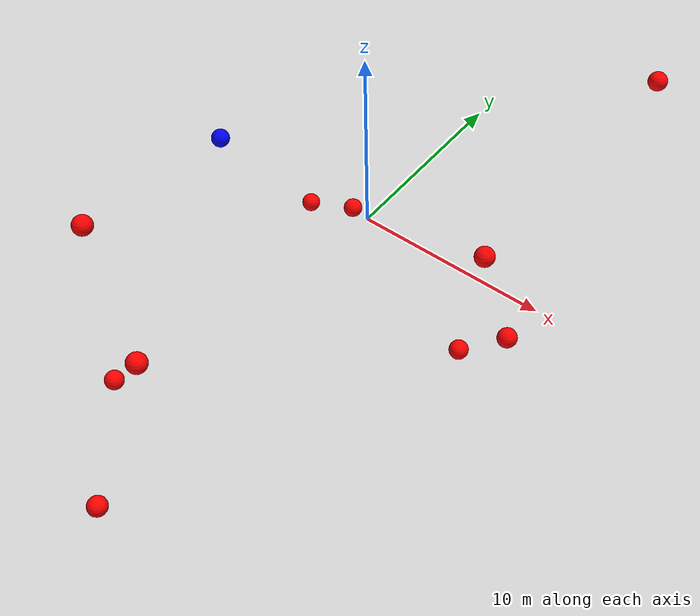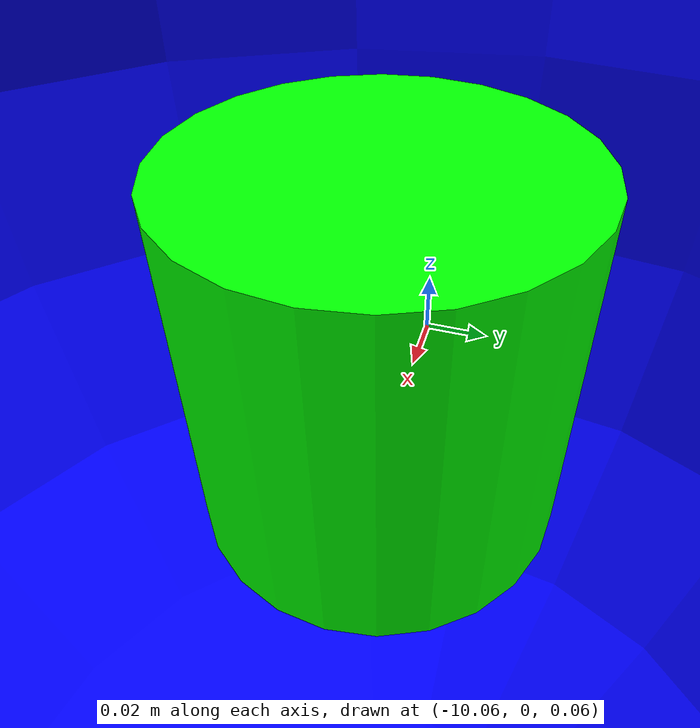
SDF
<?xml version="1.0" ?>
<sdf version="1.8">
    <world name="3d_world">
        <physics name="1ms" type="ode">
            <max_step_size>0.001</max_step_size>
            <real_time_factor>1.0</real_time_factor>
            <real_time_update_rate>1000.0</real_time_update_rate>
        </physics>
        <gravity>0 0 0</gravity>

        <plugin
            filename="gz-sim-physics-system"
            name="gz::sim::v8::systems::Physics">
        </plugin>
        <plugin
            filename="libignition-gazebo-user-commands-system.so"
            name="ignition::gazebo::systems::UserCommands">
        </plugin>
        <plugin
            filename="gz-sim-scene-broadcaster-system"
            name="gz::sim::systems::SceneBroadcaster">
        </plugin>
        <plugin
            filename="gz-sim-sensors-system"
            name="gz::sim::systems::Sensors">
            <render_engine>ogre2</render_engine>
        </plugin>

        <light type="directional" name="sun">
            <cast_shadows>true</cast_shadows>
            <pose>0 0 10 0 0 0</pose>
            <diffuse>0.8 0.8 0.8 1</diffuse>
            <specular>0.2 0.2 0.2 1</specular>
            <attenuation>
                <range>1000</range>
                <constant>0.9</constant>
                <linear>0.01</linear>
                <quadratic>0.001</quadratic>
            </attenuation>
            <direction>-0.5 0.1 -0.9</direction>
        </light>

        <!-- AGENTE -->
        <model name='agente' canonical_link='chassis'>
            <pose relative_to='world'>-10.0 0 0.0 0 0 0</pose>
            <link name='chassis'>
                <pose relative_to='__model__'>0.0 0 0.0 0 0 0</pose>
                <inertial>
                    <mass>1.14395</mass>
                    <inertia>
                        <ixx>0.095329</ixx>
                        <ixy>0</ixy>
                        <ixz>0</ixz>
                        <iyy>0.381317</iyy>
                        <iyz>0</iyz>
                        <izz>0.476646</izz>
                    </inertia>
                </inertial>
                <visual name='visual'>
                    <geometry>
                        <sphere>
                            <radius>0.5</radius>
                        </sphere>
                    </geometry>
                    <material>
                        <ambient>0.0 0.0 1.0 1</ambient>
                        <diffuse>0.0 0.0 1.0 1</diffuse>
                        <specular>0.0 0.0 1.0 1</specular>
                    </material>
                </visual>
                <collision name='collision'>
                    <geometry>
                        <sphere>
                            <radius>0.5</radius>
                        </sphere>
                    </geometry>
                </collision>
                <enable_gravity>false</enable_gravity>
            </link>

            <link name='lidar_link'>
                <pose relative_to='chassis'>0.0 0 0.1 0 0 0</pose>
                <inertial>
                    <mass>0.1</mass>
                    <inertia>
                        <ixx>0.000166667</ixx>
                        <iyy>0.000166667</iyy>
                        <izz>0.000166667</izz>
                    </inertia>
                </inertial>
                <collision name='collision'>
                    <geometry>
                        <cylinder>
                            <radius>0.05</radius>
                            <length>0.1</length>
                        </cylinder>
                    </geometry>
                </collision>
                <visual name='visual'>
                    <geometry>
                        <cylinder>
                            <radius>0.05</radius>
                            <length>0.1</length>
                        </cylinder>
                    </geometry>
                    <material>
                        <ambient>0.0 1.0 0.0 1</ambient>
                        <diffuse>0.0 1.0 0.0 1</diffuse>
                        <specular>0.0 1.0 0.0 1</specular>
                    </material>
                </visual>
                <sensor name="lidar" type="gpu_lidar">
                    <topic>scan</topic>
                    <update_rate>10</update_rate>
                    <lidar>
                        <scan>
                            <horizontal>
                                <samples>5000</samples>
                                <resolution>1</resolution>
                                <min_angle>-3.14159</min_angle>
                                <max_angle>3.14159</max_angle>
                            </horizontal>
                        </scan>
                        <range>
                            <min>0.1</min>
                            <max>10.0</max>
                            <resolution>0.01</resolution>
                        </range>
                    </lidar>
                    <visualize>true</visualize>
                    <always_on>true</always_on>
                    <update_rate>10</update_rate>
                    <pose_frame>lidar</pose_frame>
                </sensor>
                <enable_gravity>false</enable_gravity>
            </link>

            <joint name="lidar_joint" type="fixed">
                <parent>chassis</parent>
                <child>lidar_link</child>
            </joint>

            <plugin
                filename="ignition-gazebo-joint-state-publisher-system"
                name="ignition::gazebo::systems::JointStatePublisher">
            </plugin>
            <plugin
                filename="ignition-gazebo-odometry-publisher-system"
                name="ignition::gazebo::systems::OdometryPublisher">
                <dimensions>3</dimensions>
            </plugin>
            <plugin
                filename="ignition-gazebo-velocity-control-system"
                name="ignition::gazebo::systems::VelocityControl">
                <initial_linear>0.0 0 0</initial_linear>
                <initial_angular>0 0 0.0</initial_angular>
            </plugin>
            <plugin
                filename="libignition-gazebo-pose-publisher-system.so"
                name="ignition::gazebo::systems::PosePublisher">
                <topic>/agente/pose</topic>
                <frame_id>agente</frame_id>
                <update_rate>30</update_rate>
            </plugin>
        </model>

        <!-- OBSTACLE 1 -->
        <model name='obstacle_1' canonical_link='obstacle'>
            <static>false</static>
            <pose relative_to='world'>6.88 -1.60 -3.72 0 0 0</pose>
            <link name='obstacle'>
                <pose relative_to='__model__'>0.0 0 0.0 0 0 0</pose>
                <visual name='visual'>
                    <geometry>
                        <sphere>
                            <radius>0.50</radius>
                        </sphere>
                    </geometry>
                    <material>
                        <ambient>1.0 0.0 0.0 1</ambient>
                        <diffuse>1.0 0.0 0.0 1</diffuse>
                        <specular>1.0 0.0 0.0 1</specular>
                    </material>
                </visual>
                <collision name='collision'>
                    <geometry>
                        <sphere>
                            <radius>0.50</radius>
                        </sphere>
                    </geometry>
                </collision>
                <enable_gravity>false</enable_gravity>
            </link>

            <plugin
                filename="ignition-gazebo-velocity-control-system"
                name="ignition::gazebo::systems::VelocityControl">
                <initial_linear>-1.89 0.26 0.61</initial_linear>
                <initial_angular>0 0 0</initial_angular>
            </plugin>

            <plugin
                filename="ignition-gazebo-odometry-publisher-system"
                name="ignition::gazebo::systems::OdometryPublisher">
                <dimensions>3</dimensions>
            </plugin>
        </model>

        <!-- OBSTACLE 2 -->
        <model name='obstacle_2' canonical_link='obstacle'>
            <static>false</static>
            <pose relative_to='world'>-5.76 -13.05 -4.17 0 0 0</pose>
            <link name='obstacle'>
                <pose relative_to='__model__'>0.0 0 0.0 0 0 0</pose>
                <visual name='visual'>
                    <geometry>
                        <sphere>
                            <radius>0.50</radius>
                        </sphere>
                    </geometry>
                    <material>
                        <ambient>1.0 0.0 0.0 1</ambient>
                        <diffuse>1.0 0.0 0.0 1</diffuse>
                        <specular>1.0 0.0 0.0 1</specular>
                    </material>
                </visual>
                <collision name='collision'>
                    <geometry>
                        <sphere>
                            <radius>0.50</radius>
                        </sphere>
                    </geometry>
                </collision>
                <enable_gravity>false</enable_gravity>
            </link>

            <plugin
                filename="ignition-gazebo-velocity-control-system"
                name="ignition::gazebo::systems::VelocityControl">
                <initial_linear>1.38 1.38 0.44</initial_linear>
                <initial_angular>0 0 0</initial_angular>
            </plugin>

            <plugin
                filename="ignition-gazebo-odometry-publisher-system"
                name="ignition::gazebo::systems::OdometryPublisher">
                <dimensions>3</dimensions>
            </plugin>
        </model>

        <!-- OBSTACLE 3 -->
        <model name='obstacle_3' canonical_link='obstacle'>
            <static>false</static>
            <pose relative_to='world'>-2.94 2.43 -2.98 0 0 0</pose>
            <link name='obstacle'>
                <pose relative_to='__model__'>0.0 0 0.0 0 0 0</pose>
                <visual name='visual'>
                    <geometry>
                        <sphere>
                            <radius>0.50</radius>
                        </sphere>
                    </geometry>
                    <material>
                        <ambient>1.0 0.0 0.0 1</ambient>
                        <diffuse>1.0 0.0 0.0 1</diffuse>
                        <specular>1.0 0.0 0.0 1</specular>
                    </material>
                </visual>
                <collision name='collision'>
                    <geometry>
                        <sphere>
                            <radius>0.50</radius>
                        </sphere>
                    </geometry>
                </collision>
                <enable_gravity>false</enable_gravity>
            </link>

            <plugin
                filename="ignition-gazebo-velocity-control-system"
                name="ignition::gazebo::systems::VelocityControl">
                <initial_linear>1.31 -0.41 0.50</initial_linear>
                <initial_angular>0 0 0</initial_angular>
            </plugin>

            <plugin
                filename="ignition-gazebo-odometry-publisher-system"
                name="ignition::gazebo::systems::OdometryPublisher">
                <dimensions>3</dimensions>
            </plugin>
        </model>

        <!-- OBSTACLE 4 -->
        <model name='obstacle_4' canonical_link='obstacle'>
            <static>false</static>
            <pose relative_to='world'>8.56 12.85 4.65 0 0 0</pose>
            <link name='obstacle'>
                <pose relative_to='__model__'>0.0 0 0.0 0 0 0</pose>
                <visual name='visual'>
                    <geometry>
                        <sphere>
                            <radius>0.50</radius>
                        </sphere>
                    </geometry>
                    <material>
                        <ambient>1.0 0.0 0.0 1</ambient>
                        <diffuse>1.0 0.0 0.0 1</diffuse>
                        <specular>1.0 0.0 0.0 1</specular>
                    </material>
                </visual>
                <collision name='collision'>
                    <geometry>
                        <sphere>
                            <radius>0.50</radius>
                        </sphere>
                    </geometry>
                </collision>
                <enable_gravity>false</enable_gravity>
            </link>

            <plugin
                filename="ignition-gazebo-velocity-control-system"
                name="ignition::gazebo::systems::VelocityControl">
                <initial_linear>-1.38 -1.36 -0.49</initial_linear>
                <initial_angular>0 0 0</initial_angular>
            </plugin>

            <plugin
                filename="ignition-gazebo-odometry-publisher-system"
                name="ignition::gazebo::systems::OdometryPublisher">
                <dimensions>3</dimensions>
            </plugin>
        </model>

        <!-- OBSTACLE 5 -->
        <model name='obstacle_5' canonical_link='obstacle'>
            <static>false</static>
            <pose relative_to='world'>9.35 -1.34 -1.13 0 0 0</pose>
            <link name='obstacle'>
                <pose relative_to='__model__'>0.0 0 0.0 0 0 0</pose>
                <visual name='visual'>
                    <geometry>
                        <sphere>
                            <radius>0.50</radius>
                        </sphere>
                    </geometry>
                    <material>
                        <ambient>1.0 0.0 0.0 1</ambient>
                        <diffuse>1.0 0.0 0.0 1</diffuse>
                        <specular>1.0 0.0 0.0 1</specular>
                    </material>
                </visual>
                <collision name='collision'>
                    <geometry>
                        <sphere>
                            <radius>0.50</radius>
                        </sphere>
                    </geometry>
                </collision>
                <enable_gravity>false</enable_gravity>
            </link>

            <plugin
                filename="ignition-gazebo-velocity-control-system"
                name="ignition::gazebo::systems::VelocityControl">
                <initial_linear>-0.94 0.24 0.20</initial_linear>
                <initial_angular>0 0 0</initial_angular>
            </plugin>

            <plugin
                filename="ignition-gazebo-odometry-publisher-system"
                name="ignition::gazebo::systems::OdometryPublisher">
                <dimensions>3</dimensions>
            </plugin>
        </model>

        <!-- OBSTACLE 6 -->
        <model name='obstacle_6' canonical_link='obstacle'>
            <static>false</static>
            <pose relative_to='world'>7.47 -0.91 2.97 0 0 0</pose>
            <link name='obstacle'>
                <pose relative_to='__model__'>0.0 0 0.0 0 0 0</pose>
                <visual name='visual'>
                    <geometry>
                        <sphere>
                            <radius>0.50</radius>
                        </sphere>
                    </geometry>
                    <material>
                        <ambient>1.0 0.0 0.0 1</ambient>
                        <diffuse>1.0 0.0 0.0 1</diffuse>
                        <specular>1.0 0.0 0.0 1</specular>
                    </material>
                </visual>
                <collision name='collision'>
                    <geometry>
                        <sphere>
                            <radius>0.50</radius>
                        </sphere>
                    </geometry>
                </collision>
                <enable_gravity>false</enable_gravity>
            </link>

            <plugin
                filename="ignition-gazebo-velocity-control-system"
                name="ignition::gazebo::systems::VelocityControl">
                <initial_linear>-0.25 0.14 -0.47</initial_linear>
                <initial_angular>0 0 0</initial_angular>
            </plugin>

            <plugin
                filename="ignition-gazebo-odometry-publisher-system"
                name="ignition::gazebo::systems::OdometryPublisher">
                <dimensions>3</dimensions>
            </plugin>
        </model>

        <!-- OBSTACLE 7 -->
        <model name='obstacle_7' canonical_link='obstacle'>
            <static>false</static>
            <pose relative_to='world'>-1.19 -14.56 2.52 0 0 0</pose>
            <link name='obstacle'>
                <pose relative_to='__model__'>0.0 0 0.0 0 0 0</pose>
                <visual name='visual'>
                    <geometry>
                        <sphere>
                            <radius>0.50</radius>
                        </sphere>
                    </geometry>
                    <material>
                        <ambient>1.0 0.0 0.0 1</ambient>
                        <diffuse>1.0 0.0 0.0 1</diffuse>
                        <specular>1.0 0.0 0.0 1</specular>
                    </material>
                </visual>
                <collision name='collision'>
                    <geometry>
                        <sphere>
                            <radius>0.50</radius>
                        </sphere>
                    </geometry>
                </collision>
                <enable_gravity>false</enable_gravity>
            </link>

            <plugin
                filename="ignition-gazebo-velocity-control-system"
                name="ignition::gazebo::systems::VelocityControl">
                <initial_linear>0.17 1.96 -0.34</initial_linear>
                <initial_angular>0 0 0</initial_angular>
            </plugin>

            <plugin
                filename="ignition-gazebo-odometry-publisher-system"
                name="ignition::gazebo::systems::OdometryPublisher">
                <dimensions>3</dimensions>
            </plugin>
        </model>

        <!-- OBSTACLE 8 -->
        <model name='obstacle_8' canonical_link='obstacle'>
            <static>false</static>
            <pose relative_to='world'>-6.28 2.77 -4.87 0 0 0</pose>
            <link name='obstacle'>
                <pose relative_to='__model__'>0.0 0 0.0 0 0 0</pose>
                <visual name='visual'>
                    <geometry>
                        <sphere>
                            <radius>0.50</radius>
                        </sphere>
                    </geometry>
                    <material>
                        <ambient>1.0 0.0 0.0 1</ambient>
                        <diffuse>1.0 0.0 0.0 1</diffuse>
                        <specular>1.0 0.0 0.0 1</specular>
                    </material>
                </visual>
                <collision name='collision'>
                    <geometry>
                        <sphere>
                            <radius>0.50</radius>
                        </sphere>
                    </geometry>
                </collision>
                <enable_gravity>false</enable_gravity>
            </link>

            <plugin
                filename="ignition-gazebo-velocity-control-system"
                name="ignition::gazebo::systems::VelocityControl">
                <initial_linear>1.54 -0.63 1.11</initial_linear>
                <initial_angular>0 0 0</initial_angular>
            </plugin>

            <plugin
                filename="ignition-gazebo-odometry-publisher-system"
                name="ignition::gazebo::systems::OdometryPublisher">
                <dimensions>3</dimensions>
            </plugin>
        </model>

        <!-- OBSTACLE 9 -->
        <model name='obstacle_9' canonical_link='obstacle'>
            <static>false</static>
            <pose relative_to='world'>-1.06 -18.60 -3.77 0 0 0</pose>
            <link name='obstacle'>
                <pose relative_to='__model__'>0.0 0 0.0 0 0 0</pose>
                <visual name='visual'>
                    <geometry>
                        <sphere>
                            <radius>0.50</radius>
                        </sphere>
                    </geometry>
                    <material>
                        <ambient>1.0 0.0 0.0 1</ambient>
                        <diffuse>1.0 0.0 0.0 1</diffuse>
                        <specular>1.0 0.0 0.0 1</specular>
                    </material>
                </visual>
                <collision name='collision'>
                    <geometry>
                        <sphere>
                            <radius>0.50</radius>
                        </sphere>
                    </geometry>
                </collision>
                <enable_gravity>false</enable_gravity>
            </link>

            <plugin
                filename="ignition-gazebo-velocity-control-system"
                name="ignition::gazebo::systems::VelocityControl">
                <initial_linear>0.36 1.93 0.39</initial_linear>
                <initial_angular>0 0 0</initial_angular>
            </plugin>

            <plugin
                filename="ignition-gazebo-odometry-publisher-system"
                name="ignition::gazebo::systems::OdometryPublisher">
                <dimensions>3</dimensions>
            </plugin>
        </model>

        <!-- OBSTACLE 10 -->
        <model name='obstacle_10' canonical_link='obstacle'>
            <static>false</static>
            <pose relative_to='world'>-7.07 -11.55 4.78 0 0 0</pose>
            <link name='obstacle'>
                <pose relative_to='__model__'>0.0 0 0.0 0 0 0</pose>
                <visual name='visual'>
                    <geometry>
                        <sphere>
                            <radius>0.50</radius>
                        </sphere>
                    </geometry>
                    <material>
                        <ambient>1.0 0.0 0.0 1</ambient>
                        <diffuse>1.0 0.0 0.0 1</diffuse>
                        <specular>1.0 0.0 0.0 1</specular>
                    </material>
                </visual>
                <collision name='collision'>
                    <geometry>
                        <sphere>
                            <radius>0.50</radius>
                        </sphere>
                    </geometry>
                </collision>
                <enable_gravity>false</enable_gravity>
            </link>

            <plugin
                filename="ignition-gazebo-velocity-control-system"
                name="ignition::gazebo::systems::VelocityControl">
                <initial_linear>0.51 1.79 -0.74</initial_linear>
                <initial_angular>0 0 0</initial_angular>
            </plugin>

            <plugin
                filename="ignition-gazebo-odometry-publisher-system"
                name="ignition::gazebo::systems::OdometryPublisher">
                <dimensions>3</dimensions>
            </plugin>
        </model>

    </world>
</sdf>
